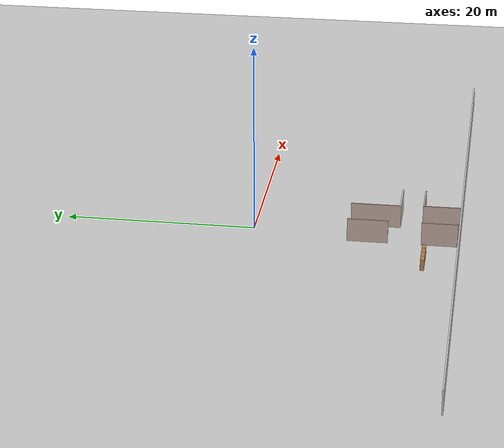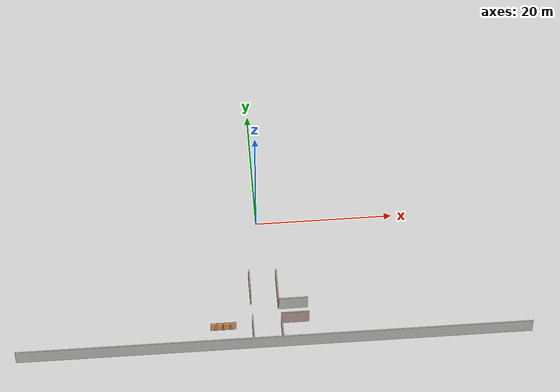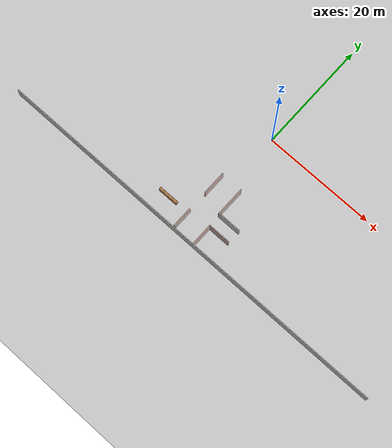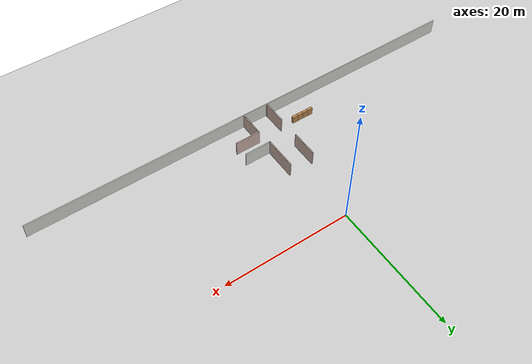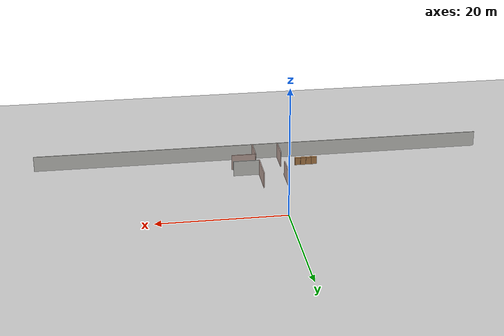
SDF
<sdf version="1.6">
 <world name="default">
  <model name="ground_plane">
   <static>1</static>
   <link name="link">
    <collision name="collision">
     <geometry><plane><normal>0 0 1</normal><size>100 100</size></plane></geometry>
     <surface><friction><ode><mu>100</mu><mu2>50</mu2></ode></friction></surface>
    </collision>
    <visual name="visual">
     <cast_shadows>0</cast_shadows>
     <geometry><plane><normal>0 0 1</normal><size>100 100</size></plane></geometry>
     <material>
      <script><uri>file://media/materials/scripts/gazebo.material</uri><name>Gazebo/Grey</name></script>
     </material>
    </visual>
   </link>
  </model>
  <model name="floor">
   <link name="Wall_10">
    <pose>0 -20.3 0 0 -0 0</pose>
    <visual name="Wall_10_Visual">
     <pose>0 0 1.25 0 -0 0</pose>
     <geometry><box><size>73.25 0.15 2.5</size></box></geometry>
     <material>
      <script><uri>file://media/materials/scripts/gazebo.material</uri><name>Gazebo/CeilingTiled</name></script>
      <ambient>0.760784 0.662745 0.627451 1</ambient>
     </material>
     <meta><layer>0</layer></meta>
    </visual>
    <collision name="Wall_10_Collision">
     <pose>0 0 1.25 0 -0 0</pose>
     <geometry><box><size>73.25 0.15 2.5</size></box></geometry>
     <surface>
      <friction>
       <ode><mu>1</mu><mu2>1</mu2><fdir1>0 0 0</fdir1><slip1>0</slip1><slip2>0</slip2></ode>
       <torsional>
        <coefficient>1</coefficient>
        <patch_radius>0</patch_radius>
        <surface_radius>0</surface_radius>
        <use_patch_radius>1</use_patch_radius>
        <ode><slip>0</slip></ode>
       </torsional>
      </friction>
      <bounce><restitution_coefficient>0</restitution_coefficient><threshold>1e+06</threshold></bounce>
      <contact>
       <collide_without_contact>0</collide_without_contact>
       <collide_without_contact_bitmask>1</collide_without_contact_bitmask>
       <collide_bitmask>1</collide_bitmask>
       <ode>
        <soft_cfm>0</soft_cfm>
        <soft_erp>0.2</soft_erp>
        <kp>1e+13</kp>
        <kd>1</kd>
        <max_vel>0.01</max_vel>
        <min_depth>0</min_depth>
       </ode>
       <bullet>
        <split_impulse>1</split_impulse>
        <split_impulse_penetration_threshold>-0.01</split_impulse_penetration_threshold>
        <soft_cfm>0</soft_cfm>
        <soft_erp>0.2</soft_erp>
        <kp>1e+13</kp>
        <kd>1</kd>
       </bullet>
      </contact>
     </surface>
    </collision>
   </link>
   <link name="Wall_108">
    <pose>-2.9642 -10.7861 0 0 0 -1.5708</pose>
    <visual name="Wall_108_Visual">
     <pose>0 0 1.25 0 -0 0</pose>
     <geometry><box><size>4.25 0.15 2.5</size></box></geometry>
     <material>
      <script><uri>file://media/materials/scripts/gazebo.material</uri><name>Gazebo/Grey</name></script>
      <ambient>0.760784 0.662745 0.627451 1</ambient>
     </material>
     <meta><layer>0</layer></meta>
    </visual>
    <collision name="Wall_108_Collision">
     <pose>0 0 1.25 0 -0 0</pose>
     <geometry><box><size>4.25 0.15 2.5</size></box></geometry>
     <surface>
      <friction>
       <ode><mu>1</mu><mu2>1</mu2><fdir1>0 0 0</fdir1><slip1>0</slip1><slip2>0</slip2></ode>
       <torsional>
        <coefficient>1</coefficient>
        <patch_radius>0</patch_radius>
        <surface_radius>0</surface_radius>
        <use_patch_radius>1</use_patch_radius>
        <ode><slip>0</slip></ode>
       </torsional>
      </friction>
      <bounce><restitution_coefficient>0</restitution_coefficient><threshold>1e+06</threshold></bounce>
      <contact>
       <collide_without_contact>0</collide_without_contact>
       <collide_without_contact_bitmask>1</collide_without_contact_bitmask>
       <collide_bitmask>1</collide_bitmask>
       <ode>
        <soft_cfm>0</soft_cfm>
        <soft_erp>0.2</soft_erp>
        <kp>1e+13</kp>
        <kd>1</kd>
        <max_vel>0.01</max_vel>
        <min_depth>0</min_depth>
       </ode>
       <bullet>
        <split_impulse>1</split_impulse>
        <split_impulse_penetration_threshold>-0.01</split_impulse_penetration_threshold>
        <soft_cfm>0</soft_cfm>
        <soft_erp>0.2</soft_erp>
        <kp>1e+13</kp>
        <kd>1</kd>
       </bullet>
      </contact>
     </surface>
    </collision>
   </link>
   <link name="Wall_110">
    <pose>-2.9642 -18.2361 0 0 0 -1.5708</pose>
    <visual name="Wall_110_Visual">
     <pose>0 0 1.25 0 -0 0</pose>
     <geometry><box><size>3.75 0.15 2.5</size></box></geometry>
     <material>
      <script><uri>file://media/materials/scripts/gazebo.material</uri><name>Gazebo/Grey</name></script>
      <ambient>0.760784 0.662745 0.627451 1</ambient>
     </material>
     <meta><layer>0</layer></meta>
    </visual>
    <collision name="Wall_110_Collision">
     <pose>0 0 1.25 0 -0 0</pose>
     <geometry><box><size>3.75 0.15 2.5</size></box></geometry>
     <surface>
      <friction>
       <ode><mu>1</mu><mu2>1</mu2><fdir1>0 0 0</fdir1><slip1>0</slip1><slip2>0</slip2></ode>
       <torsional>
        <coefficient>1</coefficient>
        <patch_radius>0</patch_radius>
        <surface_radius>0</surface_radius>
        <use_patch_radius>1</use_patch_radius>
        <ode><slip>0</slip></ode>
       </torsional>
      </friction>
      <bounce><restitution_coefficient>0</restitution_coefficient><threshold>1e+06</threshold></bounce>
      <contact>
       <collide_without_contact>0</collide_without_contact>
       <collide_without_contact_bitmask>1</collide_without_contact_bitmask>
       <collide_bitmask>1</collide_bitmask>
       <ode>
        <soft_cfm>0</soft_cfm>
        <soft_erp>0.2</soft_erp>
        <kp>1e+13</kp>
        <kd>1</kd>
        <max_vel>0.01</max_vel>
        <min_depth>0</min_depth>
       </ode>
       <bullet>
        <split_impulse>1</split_impulse>
        <split_impulse_penetration_threshold>-0.01</split_impulse_penetration_threshold>
        <soft_cfm>0</soft_cfm>
        <soft_erp>0.2</soft_erp>
        <kp>1e+13</kp>
        <kd>1</kd>
       </bullet>
      </contact>
     </surface>
    </collision>
   </link>
   <link name="Wall_111">
    <pose>-2.9642 -20.0861 0 0 0 -1.5708</pose>
    <visual name="Wall_111_Visual">
     <pose>0 0 1.25 0 -0 0</pose>
     <geometry><box><size>0.25 0.15 2.5</size></box></geometry>
     <material>
      <script><uri>file://media/materials/scripts/gazebo.material</uri><name>Gazebo/Grey</name></script>
      <ambient>1 1 1 1</ambient>
     </material>
     <meta><layer>0</layer></meta>
    </visual>
    <collision name="Wall_111_Collision">
     <pose>0 0 1.25 0 -0 0</pose>
     <geometry><box><size>0.25 0.15 2.5</size></box></geometry>
     <surface>
      <friction>
       <ode><mu>1</mu><mu2>1</mu2><fdir1>0 0 0</fdir1><slip1>0</slip1><slip2>0</slip2></ode>
       <torsional>
        <coefficient>1</coefficient>
        <patch_radius>0</patch_radius>
        <surface_radius>0</surface_radius>
        <use_patch_radius>1</use_patch_radius>
        <ode><slip>0</slip></ode>
       </torsional>
      </friction>
      <bounce><restitution_coefficient>0</restitution_coefficient><threshold>1e+06</threshold></bounce>
      <contact>
       <collide_without_contact>0</collide_without_contact>
       <collide_without_contact_bitmask>1</collide_without_contact_bitmask>
       <collide_bitmask>1</collide_bitmask>
       <ode>
        <soft_cfm>0</soft_cfm>
        <soft_erp>0.2</soft_erp>
        <kp>1e+13</kp>
        <kd>1</kd>
        <max_vel>0.01</max_vel>
        <min_depth>0</min_depth>
       </ode>
       <bullet>
        <split_impulse>1</split_impulse>
        <split_impulse_penetration_threshold>-0.01</split_impulse_penetration_threshold>
        <soft_cfm>0</soft_cfm>
        <soft_erp>0.2</soft_erp>
        <kp>1e+13</kp>
        <kd>1</kd>
       </bullet>
      </contact>
     </surface>
    </collision>
   </link>
   <link name="Wall_116">
    <pose>0.928137 -11.3487 0 0 0 -1.5708</pose>
    <visual name="Wall_116_Visual">
     <pose>0 0 1.25 0 -0 0</pose>
     <geometry><box><size>5.25 0.15 2.5</size></box></geometry>
     <material>
      <script><uri>file://media/materials/scripts/gazebo.material</uri><name>Gazebo/Grey</name></script>
      <ambient>0.760784 0.662745 0.627451 1</ambient>
     </material>
     <meta><layer>0</layer></meta>
    </visual>
    <collision name="Wall_116_Collision">
     <pose>0 0 1.25 0 -0 0</pose>
     <geometry><box><size>5.25 0.15 2.5</size></box></geometry>
     <surface>
      <friction>
       <ode><mu>1</mu><mu2>1</mu2><fdir1>0 0 0</fdir1><slip1>0</slip1><slip2>0</slip2></ode>
       <torsional>
        <coefficient>1</coefficient>
        <patch_radius>0</patch_radius>
        <surface_radius>0</surface_radius>
        <use_patch_radius>1</use_patch_radius>
        <ode><slip>0</slip></ode>
       </torsional>
      </friction>
      <bounce><restitution_coefficient>0</restitution_coefficient><threshold>1e+06</threshold></bounce>
      <contact>
       <collide_without_contact>0</collide_without_contact>
       <collide_without_contact_bitmask>1</collide_without_contact_bitmask>
       <collide_bitmask>1</collide_bitmask>
       <ode>
        <soft_cfm>0</soft_cfm>
        <soft_erp>0.2</soft_erp>
        <kp>1e+13</kp>
        <kd>1</kd>
        <max_vel>0.01</max_vel>
        <min_depth>0</min_depth>
       </ode>
       <bullet>
        <split_impulse>1</split_impulse>
        <split_impulse_penetration_threshold>-0.01</split_impulse_penetration_threshold>
        <soft_cfm>0</soft_cfm>
        <soft_erp>0.2</soft_erp>
        <kp>1e+13</kp>
        <kd>1</kd>
       </bullet>
      </contact>
     </surface>
    </collision>
   </link>
   <link name="Wall_117">
    <pose>2.97814 -13.8987 0 0 -0 0</pose>
    <visual name="Wall_117_Visual">
     <pose>0 0 1.25 0 -0 0</pose>
     <geometry><box><size>4.25 0.15 2.5</size></box></geometry>
     <material>
      <script><uri>file://media/materials/scripts/gazebo.material</uri><name>Gazebo/CeilingTiled</name></script>
      <ambient>0.760784 0.662745 0.627451 1</ambient>
     </material>
     <meta><layer>0</layer></meta>
    </visual>
    <collision name="Wall_117_Collision">
     <pose>0 0 1.25 0 -0 0</pose>
     <geometry><box><size>4.25 0.15 2.5</size></box></geometry>
     <surface>
      <friction>
       <ode><mu>1</mu><mu2>1</mu2><fdir1>0 0 0</fdir1><slip1>0</slip1><slip2>0</slip2></ode>
       <torsional>
        <coefficient>1</coefficient>
        <patch_radius>0</patch_radius>
        <surface_radius>0</surface_radius>
        <use_patch_radius>1</use_patch_radius>
        <ode><slip>0</slip></ode>
       </torsional>
      </friction>
      <bounce><restitution_coefficient>0</restitution_coefficient><threshold>1e+06</threshold></bounce>
      <contact>
       <collide_without_contact>0</collide_without_contact>
       <collide_without_contact_bitmask>1</collide_without_contact_bitmask>
       <collide_bitmask>1</collide_bitmask>
       <ode>
        <soft_cfm>0</soft_cfm>
        <soft_erp>0.2</soft_erp>
        <kp>1e+13</kp>
        <kd>1</kd>
        <max_vel>0.01</max_vel>
        <min_depth>0</min_depth>
       </ode>
       <bullet>
        <split_impulse>1</split_impulse>
        <split_impulse_penetration_threshold>-0.01</split_impulse_penetration_threshold>
        <soft_cfm>0</soft_cfm>
        <soft_erp>0.2</soft_erp>
        <kp>1e+13</kp>
        <kd>1</kd>
       </bullet>
      </contact>
     </surface>
    </collision>
   </link>
   <link name="Wall_126">
    <pose>1.17225 -18.2656 0 0 -0 1.5708</pose>
    <visual name="Wall_126_Visual">
     <pose>0 0 1.25 0 -0 0</pose>
     <geometry><box><size>4 0.15 2.5</size></box></geometry>
     <material>
      <script><uri>file://media/materials/scripts/gazebo.material</uri><name>Gazebo/Grey</name></script>
      <ambient>0.760784 0.662745 0.627451 1</ambient>
     </material>
     <meta><layer>0</layer></meta>
    </visual>
    <collision name="Wall_126_Collision">
     <pose>0 0 1.25 0 -0 0</pose>
     <geometry><box><size>4 0.15 2.5</size></box></geometry>
     <surface>
      <friction>
       <ode><mu>1</mu><mu2>1</mu2><fdir1>0 0 0</fdir1><slip1>0</slip1><slip2>0</slip2></ode>
       <torsional>
        <coefficient>1</coefficient>
        <patch_radius>0</patch_radius>
        <surface_radius>0</surface_radius>
        <use_patch_radius>1</use_patch_radius>
        <ode><slip>0</slip></ode>
       </torsional>
      </friction>
      <bounce><restitution_coefficient>0</restitution_coefficient><threshold>1e+06</threshold></bounce>
      <contact>
       <collide_without_contact>0</collide_without_contact>
       <collide_without_contact_bitmask>1</collide_without_contact_bitmask>
       <collide_bitmask>1</collide_bitmask>
       <ode>
        <soft_cfm>0</soft_cfm>
        <soft_erp>0.2</soft_erp>
        <kp>1e+13</kp>
        <kd>1</kd>
        <max_vel>0.01</max_vel>
        <min_depth>0</min_depth>
       </ode>
       <bullet>
        <split_impulse>1</split_impulse>
        <split_impulse_penetration_threshold>-0.01</split_impulse_penetration_threshold>
        <soft_cfm>0</soft_cfm>
        <soft_erp>0.2</soft_erp>
        <kp>1e+13</kp>
        <kd>1</kd>
       </bullet>
      </contact>
     </surface>
    </collision>
   </link>
   <link name="Wall_127">
    <pose>3.09725 -16.3406 0 0 -0 0</pose>
    <visual name="Wall_127_Visual">
     <pose>0 0 1.25 0 -0 0</pose>
     <geometry><box><size>4 0.15 2.5</size></box></geometry>
     <material>
      <script><uri>file://media/materials/scripts/gazebo.material</uri><name>Gazebo/Grey</name></script>
      <ambient>0.760784 0.662745 0.627451 1</ambient>
     </material>
     <meta><layer>0</layer></meta>
    </visual>
    <collision name="Wall_127_Collision">
     <pose>0 0 1.25 0 -0 0</pose>
     <geometry><box><size>4 0.15 2.5</size></box></geometry>
     <surface>
      <friction>
       <ode><mu>1</mu><mu2>1</mu2><fdir1>0 0 0</fdir1><slip1>0</slip1><slip2>0</slip2></ode>
       <torsional>
        <coefficient>1</coefficient>
        <patch_radius>0</patch_radius>
        <surface_radius>0</surface_radius>
        <use_patch_radius>1</use_patch_radius>
        <ode><slip>0</slip></ode>
       </torsional>
      </friction>
      <bounce><restitution_coefficient>0</restitution_coefficient><threshold>1e+06</threshold></bounce>
      <contact>
       <collide_without_contact>0</collide_without_contact>
       <collide_without_contact_bitmask>1</collide_without_contact_bitmask>
       <collide_bitmask>1</collide_bitmask>
       <ode>
        <soft_cfm>0</soft_cfm>
        <soft_erp>0.2</soft_erp>
        <kp>1e+13</kp>
        <kd>1</kd>
        <max_vel>0.01</max_vel>
        <min_depth>0</min_depth>
       </ode>
       <bullet>
        <split_impulse>1</split_impulse>
        <split_impulse_penetration_threshold>-0.01</split_impulse_penetration_threshold>
        <soft_cfm>0</soft_cfm>
        <soft_erp>0.2</soft_erp>
        <kp>1e+13</kp>
        <kd>1</kd>
       </bullet>
      </contact>
     </surface>
    </collision>
   </link>
   <static>1</static>
   <pose>1.26361 -1.27025 0 0 -0 0</pose>
  </model>
  <model name="Bookshelf-4_clone_11">
   <model name="bookshelf">
    <static>1</static>
    <link name="link">
     <inertial><mass>1</mass></inertial>
     <collision name="back">
      <pose>0 0.005 0.6 0 -0 0</pose>
      <geometry><box><size>0.9 0.01 1.2</size></box></geometry>
     </collision>
     <visual name="visual1">
      <pose>0 0.005 0.6 0 -0 0</pose>
      <geometry><box><size>0.9 0.01 1.2</size></box></geometry>
      <material>
       <script><uri>file://media/materials/scripts/gazebo.material</uri><name>Gazebo/Wood</name></script>
      </material>
     </visual>
     <collision name="left_side">
      <pose>0.45 -0.195 0.6 0 -0 0</pose>
      <geometry><box><size>0.02 0.4 1.2</size></box></geometry>
     </collision>
     <visual name="visual2">
      <pose>0.45 -0.195 0.6 0 -0 0</pose>
      <geometry><box><size>0.02 0.4 1.2</size></box></geometry>
      <material>
       <script><uri>file://media/materials/scripts/gazebo.material</uri><name>Gazebo/Wood</name></script>
      </material>
     </visual>
     <collision name="right_side">
      <pose>-0.45 -0.195 0.6 0 -0 0</pose>
      <geometry><box><size>0.02 0.4 1.2</size></box></geometry>
     </collision>
     <visual name="visual3">
      <pose>-0.45 -0.195 0.6 0 -0 0</pose>
      <geometry><box><size>0.02 0.4 1.2</size></box></geometry>
      <material>
       <script><uri>file://media/materials/scripts/gazebo.material</uri><name>Gazebo/Wood</name></script>
      </material>
     </visual>
     <collision name="bottom">
      <pose>0 -0.195 0.03 0 -0 0</pose>
      <geometry><box><size>0.88 0.4 0.06</size></box></geometry>
     </collision>
     <visual name="visual4">
      <pose>0 -0.195 0.03 0 -0 0</pose>
      <geometry><box><size>0.88 0.4 0.06</size></box></geometry>
      <material>
       <script><uri>file://media/materials/scripts/gazebo.material</uri><name>Gazebo/Wood</name></script>
      </material>
     </visual>
     <collision name="top">
      <pose>0 -0.195 1.19 0 -0 0</pose>
      <geometry><box><size>0.88 0.4 0.02</size></box></geometry>
     </collision>
     <visual name="visual5">
      <pose>0 -0.195 1.19 0 -0 0</pose>
      <geometry><box><size>0.88 0.4 0.02</size></box></geometry>
      <material>
       <script><uri>file://media/materials/scripts/gazebo.material</uri><name>Gazebo/Wood</name></script>
      </material>
     </visual>
     <collision name="low_shelf">
      <pose>0 -0.195 0.43 0 -0 0</pose>
      <geometry><box><size>0.88 0.4 0.02</size></box></geometry>
     </collision>
     <visual name="visual6">
      <pose>0 -0.195 0.43 0 -0 0</pose>
      <geometry><box><size>0.88 0.4 0.02</size></box></geometry>
      <material>
       <script><uri>file://media/materials/scripts/gazebo.material</uri><name>Gazebo/Wood</name></script>
      </material>
     </visual>
     <collision name="high_shelf">
      <pose>0 -0.195 0.8 0 -0 0</pose>
      <geometry><box><size>0.88 0.4 0.02</size></box></geometry>
     </collision>
     <visual name="visual7">
      <pose>0 -0.195 0.8 0 -0 0</pose>
      <geometry><box><size>0.88 0.4 0.02</size></box></geometry>
      <material>
       <script><uri>file://media/materials/scripts/gazebo.material</uri><name>Gazebo/Wood</name></script>
      </material>
     </visual>
    </link>
    <pose>-1.35671 -0.002097 0 0 -0 0</pose>
   </model>
   <model name="bookshelf_0">
    <static>1</static>
    <link name="link">
     <inertial><mass>1</mass></inertial>
     <collision name="back">
      <pose>0 0.005 0.6 0 -0 0</pose>
      <geometry><box><size>0.9 0.01 1.2</size></box></geometry>
     </collision>
     <visual name="visual1">
      <pose>0 0.005 0.6 0 -0 0</pose>
      <geometry><box><size>0.9 0.01 1.2</size></box></geometry>
      <material>
       <script><uri>file://media/materials/scripts/gazebo.material</uri><name>Gazebo/Wood</name></script>
      </material>
     </visual>
     <collision name="left_side">
      <pose>0.45 -0.195 0.6 0 -0 0</pose>
      <geometry><box><size>0.02 0.4 1.2</size></box></geometry>
     </collision>
     <visual name="visual2">
      <pose>0.45 -0.195 0.6 0 -0 0</pose>
      <geometry><box><size>0.02 0.4 1.2</size></box></geometry>
      <material>
       <script><uri>file://media/materials/scripts/gazebo.material</uri><name>Gazebo/Wood</name></script>
      </material>
     </visual>
     <collision name="right_side">
      <pose>-0.45 -0.195 0.6 0 -0 0</pose>
      <geometry><box><size>0.02 0.4 1.2</size></box></geometry>
     </collision>
     <visual name="visual3">
      <pose>-0.45 -0.195 0.6 0 -0 0</pose>
      <geometry><box><size>0.02 0.4 1.2</size></box></geometry>
      <material>
       <script><uri>file://media/materials/scripts/gazebo.material</uri><name>Gazebo/Wood</name></script>
      </material>
     </visual>
     <collision name="bottom">
      <pose>0 -0.195 0.03 0 -0 0</pose>
      <geometry><box><size>0.88 0.4 0.06</size></box></geometry>
     </collision>
     <visual name="visual4">
      <pose>0 -0.195 0.03 0 -0 0</pose>
      <geometry><box><size>0.88 0.4 0.06</size></box></geometry>
      <material>
       <script><uri>file://media/materials/scripts/gazebo.material</uri><name>Gazebo/Wood</name></script>
      </material>
     </visual>
     <collision name="top">
      <pose>0 -0.195 1.19 0 -0 0</pose>
      <geometry><box><size>0.88 0.4 0.02</size></box></geometry>
     </collision>
     <visual name="visual5">
      <pose>0 -0.195 1.19 0 -0 0</pose>
      <geometry><box><size>0.88 0.4 0.02</size></box></geometry>
      <material>
       <script><uri>file://media/materials/scripts/gazebo.material</uri><name>Gazebo/Wood</name></script>
      </material>
     </visual>
     <collision name="low_shelf">
      <pose>0 -0.195 0.43 0 -0 0</pose>
      <geometry><box><size>0.88 0.4 0.02</size></box></geometry>
     </collision>
     <visual name="visual6">
      <pose>0 -0.195 0.43 0 -0 0</pose>
      <geometry><box><size>0.88 0.4 0.02</size></box></geometry>
      <material>
       <script><uri>file://media/materials/scripts/gazebo.material</uri><name>Gazebo/Wood</name></script>
      </material>
     </visual>
     <collision name="high_shelf">
      <pose>0 -0.195 0.8 0 -0 0</pose>
      <geometry><box><size>0.88 0.4 0.02</size></box></geometry>
     </collision>
     <visual name="visual7">
      <pose>0 -0.195 0.8 0 -0 0</pose>
      <geometry><box><size>0.88 0.4 0.02</size></box></geometry>
      <material>
       <script><uri>file://media/materials/scripts/gazebo.material</uri><name>Gazebo/Wood</name></script>
      </material>
     </visual>
    </link>
    <pose>-0.452974 0.001386 0 0 -0 0</pose>
   </model>
   <model name="bookshelf_1">
    <static>1</static>
    <link name="link">
     <inertial><mass>1</mass></inertial>
     <collision name="back">
      <pose>0 0.005 0.6 0 -0 0</pose>
      <geometry><box><size>0.9 0.01 1.2</size></box></geometry>
     </collision>
     <visual name="visual1">
      <pose>0 0.005 0.6 0 -0 0</pose>
      <geometry><box><size>0.9 0.01 1.2</size></box></geometry>
      <material>
       <script><uri>file://media/materials/scripts/gazebo.material</uri><name>Gazebo/Wood</name></script>
      </material>
     </visual>
     <collision name="left_side">
      <pose>0.45 -0.195 0.6 0 -0 0</pose>
      <geometry><box><size>0.02 0.4 1.2</size></box></geometry>
     </collision>
     <visual name="visual2">
      <pose>0.45 -0.195 0.6 0 -0 0</pose>
      <geometry><box><size>0.02 0.4 1.2</size></box></geometry>
      <material>
       <script><uri>file://media/materials/scripts/gazebo.material</uri><name>Gazebo/Wood</name></script>
      </material>
     </visual>
     <collision name="right_side">
      <pose>-0.45 -0.195 0.6 0 -0 0</pose>
      <geometry><box><size>0.02 0.4 1.2</size></box></geometry>
     </collision>
     <visual name="visual3">
      <pose>-0.45 -0.195 0.6 0 -0 0</pose>
      <geometry><box><size>0.02 0.4 1.2</size></box></geometry>
      <material>
       <script><uri>file://media/materials/scripts/gazebo.material</uri><name>Gazebo/Wood</name></script>
      </material>
     </visual>
     <collision name="bottom">
      <pose>0 -0.195 0.03 0 -0 0</pose>
      <geometry><box><size>0.88 0.4 0.06</size></box></geometry>
     </collision>
     <visual name="visual4">
      <pose>0 -0.195 0.03 0 -0 0</pose>
      <geometry><box><size>0.88 0.4 0.06</size></box></geometry>
      <material>
       <script><uri>file://media/materials/scripts/gazebo.material</uri><name>Gazebo/Wood</name></script>
      </material>
     </visual>
     <collision name="top">
      <pose>0 -0.195 1.19 0 -0 0</pose>
      <geometry><box><size>0.88 0.4 0.02</size></box></geometry>
     </collision>
     <visual name="visual5">
      <pose>0 -0.195 1.19 0 -0 0</pose>
      <geometry><box><size>0.88 0.4 0.02</size></box></geometry>
      <material>
       <script><uri>file://media/materials/scripts/gazebo.material</uri><name>Gazebo/Wood</name></script>
      </material>
     </visual>
     <collision name="low_shelf">
      <pose>0 -0.195 0.43 0 -0 0</pose>
      <geometry><box><size>0.88 0.4 0.02</size></box></geometry>
     </collision>
     <visual name="visual6">
      <pose>0 -0.195 0.43 0 -0 0</pose>
      <geometry><box><size>0.88 0.4 0.02</size></box></geometry>
      <material>
       <script><uri>file://media/materials/scripts/gazebo.material</uri><name>Gazebo/Wood</name></script>
      </material>
     </visual>
     <collision name="high_shelf">
      <pose>0 -0.195 0.8 0 -0 0</pose>
      <geometry><box><size>0.88 0.4 0.02</size></box></geometry>
     </collision>
     <visual name="visual7">
      <pose>0 -0.195 0.8 0 -0 0</pose>
      <geometry><box><size>0.88 0.4 0.02</size></box></geometry>
      <material>
       <script><uri>file://media/materials/scripts/gazebo.material</uri><name>Gazebo/Wood</name></script>
      </material>
     </visual>
    </link>
    <pose>0.450456 0.000733 0 0 -0 0</pose>
   </model>
   <model name="bookshelf_2">
    <static>1</static>
    <link name="link">
     <inertial><mass>1</mass></inertial>
     <collision name="back">
      <pose>0 0.005 0.6 0 -0 0</pose>
      <geometry><box><size>0.9 0.01 1.2</size></box></geometry>
     </collision>
     <visual name="visual1">
      <pose>0 0.005 0.6 0 -0 0</pose>
      <geometry><box><size>0.9 0.01 1.2</size></box></geometry>
      <material>
       <script><uri>file://media/materials/scripts/gazebo.material</uri><name>Gazebo/Wood</name></script>
      </material>
     </visual>
     <collision name="left_side">
      <pose>0.45 -0.195 0.6 0 -0 0</pose>
      <geometry><box><size>0.02 0.4 1.2</size></box></geometry>
     </collision>
     <visual name="visual2">
      <pose>0.45 -0.195 0.6 0 -0 0</pose>
      <geometry><box><size>0.02 0.4 1.2</size></box></geometry>
      <material>
       <script><uri>file://media/materials/scripts/gazebo.material</uri><name>Gazebo/Wood</name></script>
      </material>
     </visual>
     <collision name="right_side">
      <pose>-0.45 -0.195 0.6 0 -0 0</pose>
      <geometry><box><size>0.02 0.4 1.2</size></box></geometry>
     </collision>
     <visual name="visual3">
      <pose>-0.45 -0.195 0.6 0 -0 0</pose>
      <geometry><box><size>0.02 0.4 1.2</size></box></geometry>
      <material>
       <script><uri>file://media/materials/scripts/gazebo.material</uri><name>Gazebo/Wood</name></script>
      </material>
     </visual>
     <collision name="bottom">
      <pose>0 -0.195 0.03 0 -0 0</pose>
      <geometry><box><size>0.88 0.4 0.06</size></box></geometry>
     </collision>
     <visual name="visual4">
      <pose>0 -0.195 0.03 0 -0 0</pose>
      <geometry><box><size>0.88 0.4 0.06</size></box></geometry>
      <material>
       <script><uri>file://media/materials/scripts/gazebo.material</uri><name>Gazebo/Wood</name></script>
      </material>
     </visual>
     <collision name="top">
      <pose>0 -0.195 1.19 0 -0 0</pose>
      <geometry><box><size>0.88 0.4 0.02</size></box></geometry>
     </collision>
     <visual name="visual5">
      <pose>0 -0.195 1.19 0 -0 0</pose>
      <geometry><box><size>0.88 0.4 0.02</size></box></geometry>
      <material>
       <script><uri>file://media/materials/scripts/gazebo.material</uri><name>Gazebo/Wood</name></script>
      </material>
     </visual>
     <collision name="low_shelf">
      <pose>0 -0.195 0.43 0 -0 0</pose>
      <geometry><box><size>0.88 0.4 0.02</size></box></geometry>
     </collision>
     <visual name="visual6">
      <pose>0 -0.195 0.43 0 -0 0</pose>
      <geometry><box><size>0.88 0.4 0.02</size></box></geometry>
      <material>
       <script><uri>file://media/materials/scripts/gazebo.material</uri><name>Gazebo/Wood</name></script>
      </material>
     </visual>
     <collision name="high_shelf">
      <pose>0 -0.195 0.8 0 -0 0</pose>
      <geometry><box><size>0.88 0.4 0.02</size></box></geometry>
     </collision>
     <visual name="visual7">
      <pose>0 -0.195 0.8 0 -0 0</pose>
      <geometry><box><size>0.88 0.4 0.02</size></box></geometry>
      <material>
       <script><uri>file://media/materials/scripts/gazebo.material</uri><name>Gazebo/Wood</name></script>
      </material>
     </visual>
    </link>
    <pose>1.35922 -1.7e-05 0 0 -0 0</pose>
   </model>
   <static>0</static>
   <pose>-5.88447 -17.8896 0 0 -0 0</pose>
  </model>
 </world>
</sdf>
